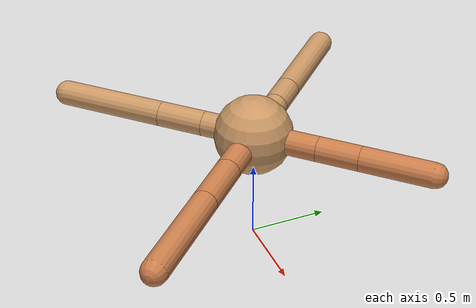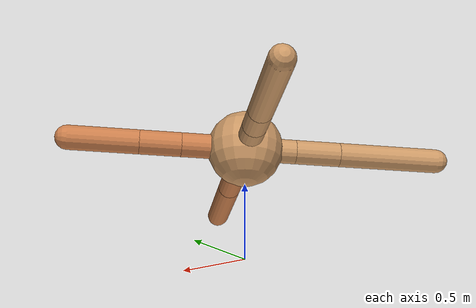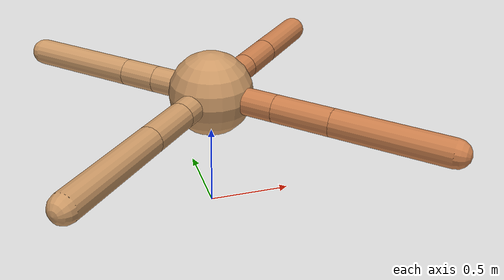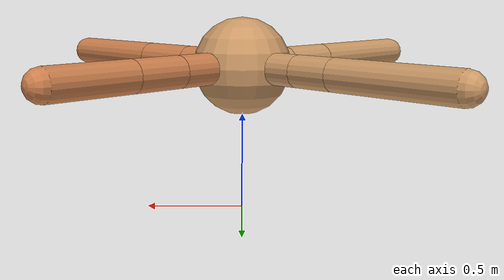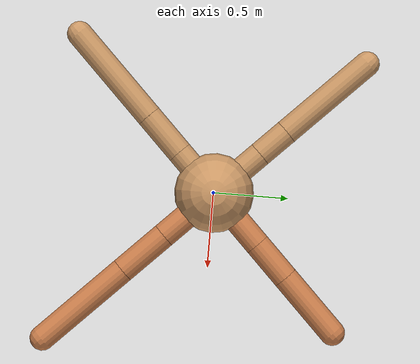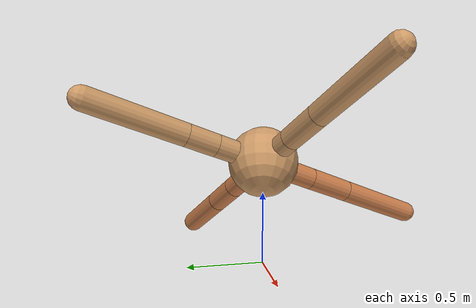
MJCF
<mujoco model="ant">
  <compiler angle="degree" coordinate="local" inertiafromgeom="true" />
  <option integrator="RK4" timestep="0.01" />
  <custom>
    <numeric data="0.0 0.0 0.55 1.0 0.0 0.0 0.0 0.0 1.0 0.0 -1.0 0.0 -1.0 0.0 1.0" name="init_qpos" />
  </custom>
  <default>
    <joint armature="1" damping="1" limited="true" />
    <geom conaffinity="0" condim="3" density="5.0" friction="1.5 0.1 0.1" margin="0.01" rgba="0.8 0.6 0.4 1" />
  </default>
  <worldbody>
    <body name="torso" pos="0 0 0.75">
      <geom name="torso_geom" pos="0 0 0" size="0.25" type="sphere" />

      <body name="front_left_leg" pos="0 0 0">
        <geom fromto="0.0 0.0 0.0 0.2988220411206364 0.2988220411206364 0.0" name="aux_1_geom" size="0.08" type="capsule" rgba=".8 .5 .3 1" />
        <body name="aux_1" pos="0.2988220411206364 0.2988220411206364 0.0">
          <joint axis="0 0 1" name="hip_1" pos="0.0 0.0 0.0" range="-40 40" type="hinge" />
          <geom fromto="0.0 0.0 0.0 0.1925587076066314 0.1925587076066314 0.0" name="left_leg_geom" size="0.08" type="capsule" rgba=".8 .5 .3 1" />
          <body pos="0.1925587076066314 0.1925587076066314 0.0" name="front_left_foot">
            <joint axis="-1 1 0" name="ankle_1" pos="0.0 0.0 0.0" range="30 100" type="hinge" />
            <geom fromto="0.0 0.0 0.0 0.3226921572179735 0.3226921572179735 0.0" name="left_ankle_geom" size="0.08" type="capsule" rgba=".8 .5 .3 1" />
          </body>
        </body>
      </body>
      <body name="front_right_leg" pos="0 0 0">
        <geom fromto="0.0 0.0 0.0 -0.2658787912396564 0.2658787912396564 0.0" name="aux_2_geom" size="0.08" type="capsule" />
        <body name="aux_2" pos="-0.2658787912396564 0.2658787912396564 0.0">
          <joint axis="0 0 1" name="hip_2" pos="0.0 0.0 0.0" range="-40 40" type="hinge" />
          <geom fromto="0.0 0.0 0.0 -0.15300442280026738 0.15300442280026738 0.0" name="right_leg_geom" size="0.08" type="capsule" />
          <body pos="-0.15300442280026738 0.15300442280026738 0.0" name="front_right_foot">
            <joint axis="1 1 0" name="ankle_2" pos="0.0 0.0 0.0" range="-100 -30" type="hinge" />
            <geom fromto="0.0 0.0 0.0 -0.4693769805081008 0.4693769805081008 0.0" name="right_ankle_geom" size="0.08" type="capsule" />
          </body>
        </body>
      </body>
      <body name="left_back_leg" pos="0 0 0">
        <geom fromto="0.0 0.0 0.0 -0.23565548661180552 -0.23565548661180552 0.0" name="aux_3_geom" size="0.08" type="capsule" />
        <body name="aux_3" pos="-0.23565548661180552 -0.23565548661180552 0.0">
          <joint axis="0 0 1" name="hip_3" pos="0.0 0.0 0.0" range="-40 40" type="hinge" />
          <geom fromto="0.0 0.0 0.0 -0.21072029956785224 -0.21072029956785224 0.0" name="back_leg_geom" size="0.08" type="capsule" />
          <body pos="-0.21072029956785224 -0.21072029956785224 0.0" name="left_back_foot">
            <joint axis="-1 1 0" name="ankle_3" pos="0.0 0.0 0.0" range="-100 -30" type="hinge" />
            <geom fromto="0.0 0.0 0.0 -0.47923558479646877 -0.47923558479646877 0.0" name="third_ankle_geom" size="0.08" type="capsule" />
          </body>
        </body>
      </body>
      <body name="right_back_leg" pos="0 0 0">
        <geom fromto="0.0 0.0 0.0 0.2920398635254602 -0.2920398635254602 0.0" name="aux_4_geom" size="0.08" type="capsule" rgba=".8 .5 .3 1" />
        <body name="aux_4" pos="0.2920398635254602 -0.2920398635254602 0.0">
          <joint axis="0 0 1" name="hip_4" pos="0.0 0.0 0.0" range="-40 40" type="hinge" />
          <geom fromto="0.0 0.0 0.0 0.2391176102786129 -0.2391176102786129 0.0" name="rightback_leg_geom" size="0.08" type="capsule" rgba=".8 .5 .3 1" />
          <body pos="0.2391176102786129 -0.2391176102786129 0.0" name="right_back_foot">
            <joint axis="1 1 0" name="ankle_4" pos="0.0 0.0 0.0" range="30 100" type="hinge" />
            <geom fromto="0.0 0.0 0.0 0.46716999480816457 -0.46716999480816457 0.0" name="fourth_ankle_geom" size="0.08" type="capsule" rgba=".8 .5 .3 1" />
          </body>
        </body>
      </body>
    </body>
  </worldbody>
  <actuator>
    <motor ctrllimited="true" ctrlrange="-1.0 1.0" joint="hip_4" gear="150" />
    <motor ctrllimited="true" ctrlrange="-1.0 1.0" joint="ankle_4" gear="150" />
    <motor ctrllimited="true" ctrlrange="-1.0 1.0" joint="hip_1" gear="150" />
    <motor ctrllimited="true" ctrlrange="-1.0 1.0" joint="ankle_1" gear="150" />
    <motor ctrllimited="true" ctrlrange="-1.0 1.0" joint="hip_2" gear="150" />
    <motor ctrllimited="true" ctrlrange="-1.0 1.0" joint="ankle_2" gear="150" />
    <motor ctrllimited="true" ctrlrange="-1.0 1.0" joint="hip_3" gear="150" />
    <motor ctrllimited="true" ctrlrange="-1.0 1.0" joint="ankle_3" gear="150" />
  </actuator>
</mujoco>
